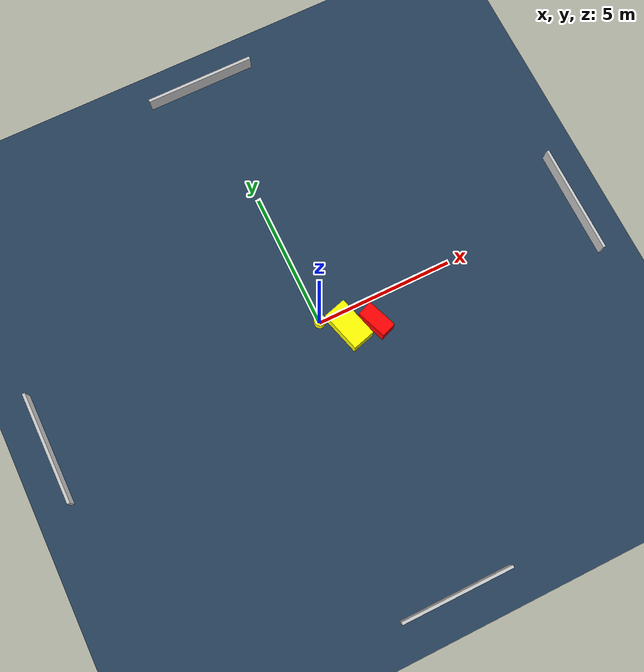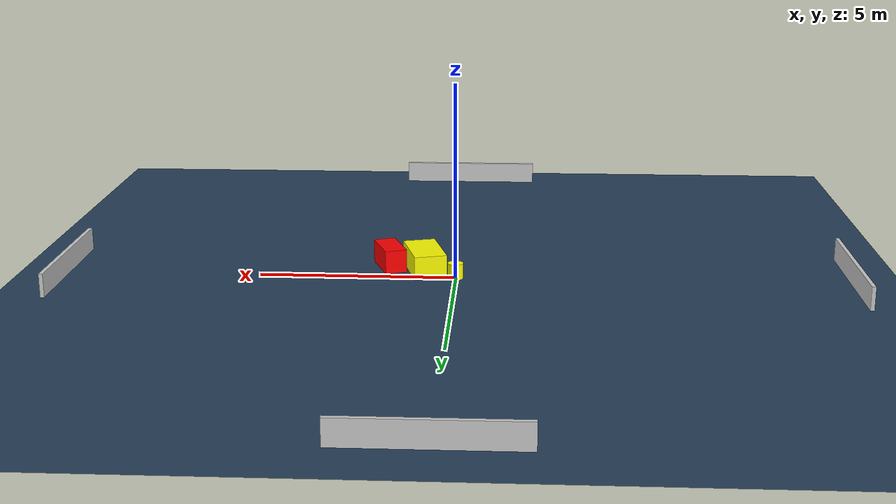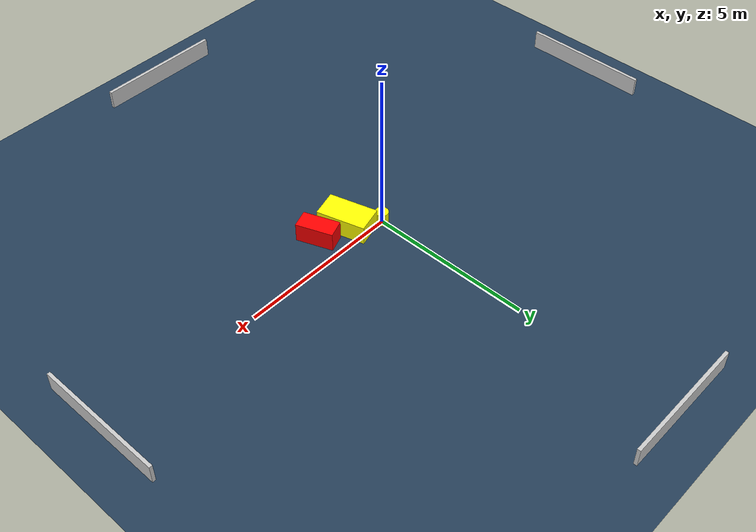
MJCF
<?xml version="1.0" ?>
<mujoco model="generated_environment">
  <option timestep="0.01" integrator="RK4" cone="elliptic"/>
  <default>
    <geom density="1"/>
  </default>
  <asset>
    <texture builtin="gradient" height="3072" name="skybox" rgb1="0.3 0.5 0.7" rgb2="0 0 0" type="skybox" width="512"/>
    <texture builtin="checker" height="300" name="groundplane" rgb1="0.2 0.3 0.4" rgb2="0.1 0.2 0.3" type="2d" width="300"/>
    <material name="groundplane" reflectance="0.2" texrepeat="5 5" texture="groundplane"/>
  </asset>
  <worldbody>
    <light dir="0 0 -1" directional="true" pos="0 0 1.5"/>
    <geom condim="3" friction="0.5 0.005 0.001" material="groundplane" name="floor" pos="0 0 0" size="0 0 0.05" type="plane"/>
    <body name="walls">
      <geom name="wall_1" condim="4" pos="-10.0 0.0 0.3" rgba="0.800000011920929 0.800000011920929 0.800000011920929 1.0" size="0.05 2.0 0.3" type="box"/>
      <geom name="wall_2" condim="4" pos="10.0 0.0 0.3" rgba="0.800000011920929 0.800000011920929 0.800000011920929 1.0" size="0.05 2.0 0.3" type="box"/>
      <geom name="wall_3" condim="4" pos="0.0 -10.0 0.3" rgba="0.800000011920929 0.800000011920929 0.800000011920929 1.0" size="2.0 0.05 0.3" type="box"/>
      <geom name="wall_4" condim="4" pos="0.0 10.0 0.3" rgba="0.800000011920929 0.800000011920929 0.800000011920929 1.0" size="2.0 0.05 0.3" type="box"/>
    </body>
    <body name="robot">
      <joint name="joint_x" type="slide" pos="0 0 0" axis="1 0 0"/>
      <joint name="joint_y" type="slide" pos="0 0 0" axis="0 1 0"/>
      <geom name="robot" type="cylinder" pos="0.0 0.0 0.2" size="0.2 0.2 0.0" mass="5.0" friction="1.0 0.005 0.0001" condim="4" rgba="1.0 1.0 0.0 1.0"/>
    </body>
    <body name="obstacle_1_movable">
      <geom name="obstacle_1_movable" condim="4" pos="0.8198201306451015 -0.5988702250956337 0.3" euler="0 0 15.734446280390761" friction="0.0 0.005 0.001" rgba="1.0 1.0 0.0 1.0" size="0.4188495416646545 0.7561414926257182 0.3" type="box" mass="0.1"/>
      <joint type="free"/>
    </body>
    <body name="obstacle_2_static">
      <geom name="obstacle_2_static" condim="4" pos="1.7385557157210405 -0.85183667099733 0.3" euler="0 0 200.79108206945978" friction="0.0 0.005 0.001" rgba="1.0 0.0 0.0 1.0" size="0.2828958730548639 0.5675739599313918 0.3" type="box"/>
    </body>
  </worldbody>
  <actuator>
    <motor name="actuator_x" joint="joint_x" gear="1" ctrlrange="-1 1"/>
    <motor name="actuator_y" joint="joint_y" gear="1" ctrlrange="-1 1"/>
  </actuator>
</mujoco>
